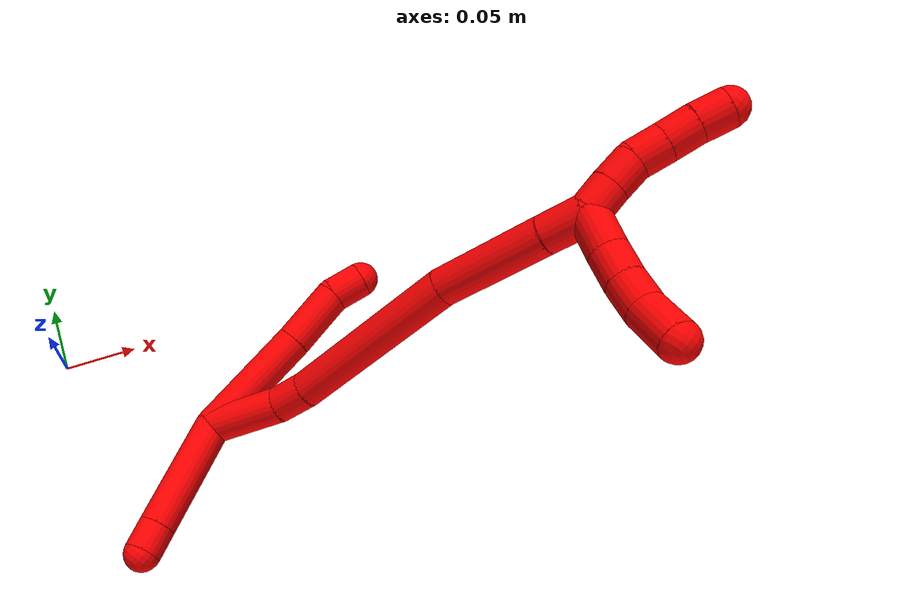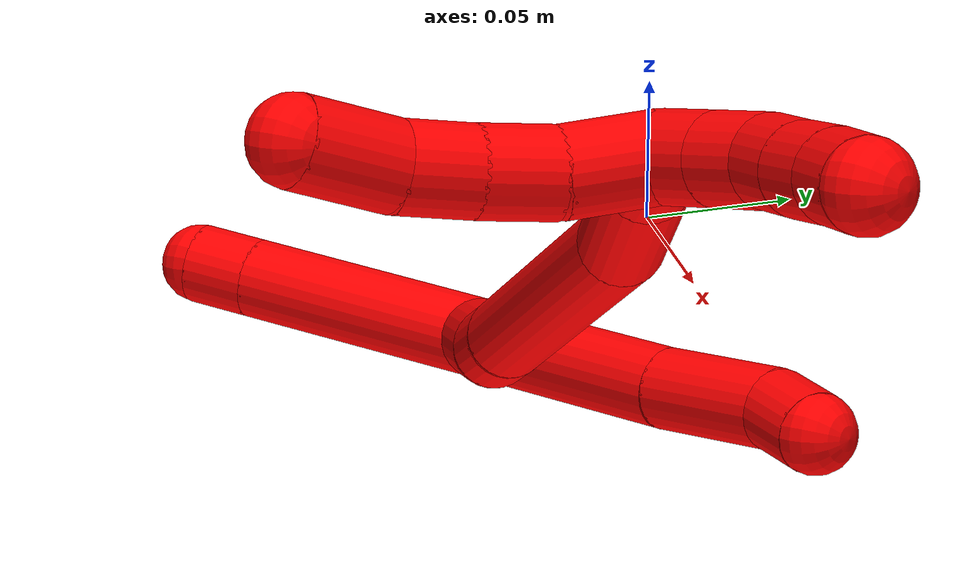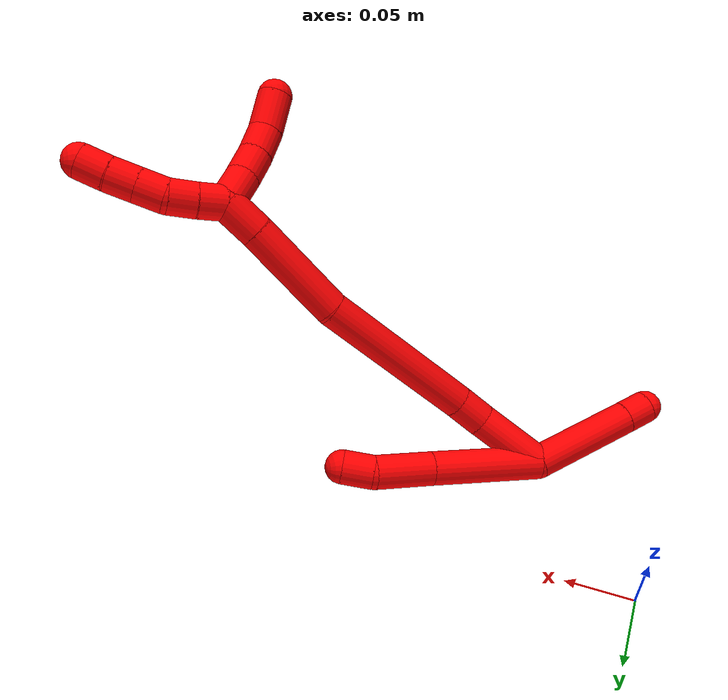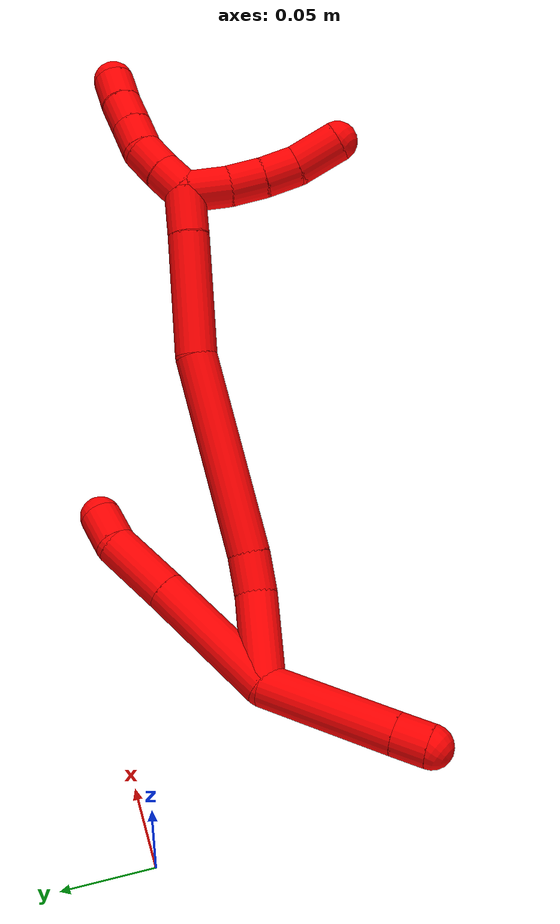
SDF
<sdf version="1.7">
 <world name="default">
  <model name="2">
   <static>0</static>
   <link name="2">
    <collision name="collision-cylinder-e_1_2_8">
     <pose>-0.000556 0.003736 0.041292 -0.090231 -0.013404 0.000605</pose>
     <geometry><cylinder><radius>0.0125</radius><length>0.082929</length></cylinder></geometry>
     <surface>
      <friction><ode><mu>1.16</mu><mu2>1.16</mu2><slip1>0</slip1><slip2>0</slip2></ode></friction>
      <contact><ode><kp>1e+06</kp><kd>1</kd><max_vel>0</max_vel><min_depth>0.001</min_depth></ode></contact>
     </surface>
    </collision>
    <visual name="visual-cylinder-e_1_2_8">
     <pose>-0.000556 0.003736 0.041292 -0.090231 -0.013404 0.000605</pose>
     <geometry><cylinder><radius>0.0125</radius><length>0.082929</length></cylinder></geometry>
     <material><ambient>1 0 0 1</ambient></material>
    </visual>
    <collision name="collision-cylinder-e_2_8_9">
     <pose>-0.000634 0.008498 0.104484 -0.046832 0.021802 -0.000511</pose>
     <geometry><cylinder><radius>0.0125</radius><length>0.043858</length></cylinder></geometry>
     <surface>
      <friction><ode><mu>1.16</mu><mu2>1.16</mu2><slip1>0</slip1><slip2>0</slip2></ode></friction>
      <contact><ode><kp>1e+06</kp><kd>1</kd><max_vel>0</max_vel><min_depth>0.001</min_depth></ode></contact>
     </surface>
    </collision>
    <visual name="visual-cylinder-e_2_8_9">
     <pose>-0.000634 0.008498 0.104484 -0.046832 0.021802 -0.000511</pose>
     <geometry><cylinder><radius>0.0125</radius><length>0.043858</length></cylinder></geometry>
     <material><ambient>1 0 0 1</ambient></material>
    </visual>
    <collision name="collision-cylinder-e_3_9_6">
     <pose>-0.000118 0.013928 0.137122 -0.389165 0.003242 -0.000639</pose>
     <geometry><cylinder><radius>0.0125</radius><length>0.023213</length></cylinder></geometry>
     <surface>
      <friction><ode><mu>1.16</mu><mu2>1.16</mu2><slip1>0</slip1><slip2>0</slip2></ode></friction>
      <contact><ode><kp>1e+06</kp><kd>1</kd><max_vel>0</max_vel><min_depth>0.001</min_depth></ode></contact>
     </surface>
    </collision>
    <visual name="visual-cylinder-e_3_9_6">
     <pose>-0.000118 0.013928 0.137122 -0.389165 0.003242 -0.000639</pose>
     <geometry><cylinder><radius>0.0125</radius><length>0.023213</length></cylinder></geometry>
     <material><ambient>1 0 0 1</ambient></material>
    </visual>
    <collision name="collision-cylinder-e_1_2_10">
     <pose>0.009615 0.008638 -0.037758 -2.9167 0.243329 -1.65023</pose>
     <geometry><cylinder><radius>0.0125</radius><length>0.079818</length></cylinder></geometry>
     <surface>
      <friction><ode><mu>1.16</mu><mu2>1.16</mu2><slip1>0</slip1><slip2>0</slip2></ode></friction>
      <contact><ode><kp>1e+06</kp><kd>1</kd><max_vel>0</max_vel><min_depth>0.001</min_depth></ode></contact>
     </surface>
    </collision>
    <visual name="visual-cylinder-e_1_2_10">
     <pose>0.009615 0.008638 -0.037758 -2.9167 0.243329 -1.65023</pose>
     <geometry><cylinder><radius>0.0125</radius><length>0.079818</length></cylinder></geometry>
     <material><ambient>1 0 0 1</ambient></material>
    </visual>
    <collision name="collision-cylinder-e_2_10_5">
     <pose>0.021719 0.019527 -0.085032 -2.90927 0.249154 -1.64134</pose>
     <geometry><cylinder><radius>0.0125</radius><length>0.020182</length></cylinder></geometry>
     <surface>
      <friction><ode><mu>1.16</mu><mu2>1.16</mu2><slip1>0</slip1><slip2>0</slip2></ode></friction>
      <contact><ode><kp>1e+06</kp><kd>1</kd><max_vel>0</max_vel><min_depth>0.001</min_depth></ode></contact>
     </surface>
    </collision>
    <visual name="visual-cylinder-e_2_10_5">
     <pose>0.021719 0.019527 -0.085032 -2.90927 0.249154 -1.64134</pose>
     <geometry><cylinder><radius>0.0125</radius><length>0.020182</length></cylinder></geometry>
     <material><ambient>1 0 0 1</ambient></material>
    </visual>
    <collision name="collision-cylinder-e_1_2_11">
     <pose>0.009379 0.015815 0.019215 -0.688668 0.360428 -0.130489</pose>
     <geometry><cylinder><radius>0.0125</radius><length>0.05319</length></cylinder></geometry>
     <surface>
      <friction><ode><mu>1.16</mu><mu2>1.16</mu2><slip1>0</slip1><slip2>0</slip2></ode></friction>
      <contact><ode><kp>1e+06</kp><kd>1</kd><max_vel>0</max_vel><min_depth>0.001</min_depth></ode></contact>
     </surface>
    </collision>
    <visual name="visual-cylinder-e_1_2_11">
     <pose>0.009379 0.015815 0.019215 -0.688668 0.360428 -0.130489</pose>
     <geometry><cylinder><radius>0.0125</radius><length>0.05319</length></cylinder></geometry>
     <material><ambient>1 0 0 1</ambient></material>
    </visual>
    <collision name="collision-cylinder-e_2_11_12">
     <pose>0.024625 0.03693 0.047437 -0.531743 0.511471 -0.142161</pose>
     <geometry><cylinder><radius>0.0125</radius><length>0.023969</length></cylinder></geometry>
     <surface>
      <friction><ode><mu>1.16</mu><mu2>1.16</mu2><slip1>0</slip1><slip2>0</slip2></ode></friction>
      <contact><ode><kp>1e+06</kp><kd>1</kd><max_vel>0</max_vel><min_depth>0.001</min_depth></ode></contact>
     </surface>
    </collision>
    <visual name="visual-cylinder-e_2_11_12">
     <pose>0.024625 0.03693 0.047437 -0.531743 0.511471 -0.142161</pose>
     <geometry><cylinder><radius>0.0125</radius><length>0.023969</length></cylinder></geometry>
     <material><ambient>1 0 0 1</ambient></material>
    </visual>
    <collision name="collision-cylinder-e_3_12_13">
     <pose>0.062575 0.062319 0.103576 -0.402946 0.559474 -0.117212</pose>
     <geometry><cylinder><radius>0.0125</radius><length>0.120902</length></cylinder></geometry>
     <surface>
      <friction><ode><mu>1.16</mu><mu2>1.16</mu2><slip1>0</slip1><slip2>0</slip2></ode></friction>
      <contact><ode><kp>1e+06</kp><kd>1</kd><max_vel>0</max_vel><min_depth>0.001</min_depth></ode></contact>
     </surface>
    </collision>
    <visual name="visual-cylinder-e_3_12_13">
     <pose>0.062575 0.062319 0.103576 -0.402946 0.559474 -0.117212</pose>
     <geometry><cylinder><radius>0.0125</radius><length>0.120902</length></cylinder></geometry>
     <material><ambient>1 0 0 1</ambient></material>
    </visual>
    <collision name="collision-cylinder-e_4_13_14">
     <pose>0.116238 0.099943 0.175145 -0.622354 0.622355 -0.206153</pose>
     <geometry><cylinder><radius>0.0125</radius><length>0.074036</length></cylinder></geometry>
     <surface>
      <friction><ode><mu>1.16</mu><mu2>1.16</mu2><slip1>0</slip1><slip2>0</slip2></ode></friction>
      <contact><ode><kp>1e+06</kp><kd>1</kd><max_vel>0</max_vel><min_depth>0.001</min_depth></ode></contact>
     </surface>
    </collision>
    <visual name="visual-cylinder-e_4_13_14">
     <pose>0.116238 0.099943 0.175145 -0.622354 0.622355 -0.206153</pose>
     <geometry><cylinder><radius>0.0125</radius><length>0.074036</length></cylinder></geometry>
     <material><ambient>1 0 0 1</ambient></material>
    </visual>
    <collision name="collision-cylinder-e_5_14_1">
     <pose>0.14528 0.12425 0.209231 -0.612061 0.564346 -0.182687</pose>
     <geometry><cylinder><radius>0.0125</radius><length>0.027903</length></cylinder></geometry>
     <surface>
      <friction><ode><mu>1.16</mu><mu2>1.16</mu2><slip1>0</slip1><slip2>0</slip2></ode></friction>
      <contact><ode><kp>1e+06</kp><kd>1</kd><max_vel>0</max_vel><min_depth>0.001</min_depth></ode></contact>
     </surface>
    </collision>
    <visual name="visual-cylinder-e_5_14_1">
     <pose>0.14528 0.12425 0.209231 -0.612061 0.564346 -0.182687</pose>
     <geometry><cylinder><radius>0.0125</radius><length>0.027903</length></cylinder></geometry>
     <material><ambient>1 0 0 1</ambient></material>
    </visual>
    <collision name="collision-cylinder-e_1_1_15">
     <pose>0.154943 0.142285 0.211492 -2.1513 0.161985 -0.298386</pose>
     <geometry><cylinder><radius>0.0125</radius><length>0.027294</length></cylinder></geometry>
     <surface>
      <friction><ode><mu>1.16</mu><mu2>1.16</mu2><slip1>0</slip1><slip2>0</slip2></ode></friction>
      <contact><ode><kp>1e+06</kp><kd>1</kd><max_vel>0</max_vel><min_depth>0.001</min_depth></ode></contact>
     </surface>
    </collision>
    <visual name="visual-cylinder-e_1_1_15">
     <pose>0.154943 0.142285 0.211492 -2.1513 0.161985 -0.298386</pose>
     <geometry><cylinder><radius>0.0125</radius><length>0.027294</length></cylinder></geometry>
     <material><ambient>1 0 0 1</ambient></material>
    </visual>
    <collision name="collision-cylinder-e_2_15_16">
     <pose>0.160789 0.162164 0.198117 -2.17822 0.334318 -0.624436</pose>
     <geometry><cylinder><radius>0.0125</radius><length>0.022217</length></cylinder></geometry>
     <surface>
      <friction><ode><mu>1.16</mu><mu2>1.16</mu2><slip1>0</slip1><slip2>0</slip2></ode></friction>
      <contact><ode><kp>1e+06</kp><kd>1</kd><max_vel>0</max_vel><min_depth>0.001</min_depth></ode></contact>
     </surface>
    </collision>
    <visual name="visual-cylinder-e_2_15_16">
     <pose>0.160789 0.162164 0.198117 -2.17822 0.334318 -0.624436</pose>
     <geometry><cylinder><radius>0.0125</radius><length>0.022217</length></cylinder></geometry>
     <material><ambient>1 0 0 1</ambient></material>
    </visual>
    <collision name="collision-cylinder-e_3_16_17">
     <pose>0.168636 0.179265 0.187075 -2.10786 0.402326 -0.68891</pose>
     <geometry><cylinder><radius>0.0125</radius><length>0.021464</length></cylinder></geometry>
     <surface>
      <friction><ode><mu>1.16</mu><mu2>1.16</mu2><slip1>0</slip1><slip2>0</slip2></ode></friction>
      <contact><ode><kp>1e+06</kp><kd>1</kd><max_vel>0</max_vel><min_depth>0.001</min_depth></ode></contact>
     </surface>
    </collision>
    <visual name="visual-cylinder-e_3_16_17">
     <pose>0.168636 0.179265 0.187075 -2.10786 0.402326 -0.68891</pose>
     <geometry><cylinder><radius>0.0125</radius><length>0.021464</length></cylinder></geometry>
     <material><ambient>1 0 0 1</ambient></material>
    </visual>
    <collision name="collision-cylinder-e_4_17_4">
     <pose>0.180976 0.198587 0.176832 -2.01754 0.595269 -0.906499</pose>
     <geometry><cylinder><radius>0.0125</radius><length>0.029025</length></cylinder></geometry>
     <surface>
      <friction><ode><mu>1.16</mu><mu2>1.16</mu2><slip1>0</slip1><slip2>0</slip2></ode></friction>
      <contact><ode><kp>1e+06</kp><kd>1</kd><max_vel>0</max_vel><min_depth>0.001</min_depth></ode></contact>
     </surface>
    </collision>
    <visual name="visual-cylinder-e_4_17_4">
     <pose>0.180976 0.198587 0.176832 -2.01754 0.595269 -0.906499</pose>
     <geometry><cylinder><radius>0.0125</radius><length>0.029025</length></cylinder></geometry>
     <material><ambient>1 0 0 1</ambient></material>
    </visual>
    <collision name="collision-cylinder-e_1_1_18">
     <pose>0.153876 0.13154 0.228801 -0.052122 0.11365 -0.002966</pose>
     <geometry><cylinder><radius>0.0125</radius><length>0.02</length></cylinder></geometry>
     <surface>
      <friction><ode><mu>1.16</mu><mu2>1.16</mu2><slip1>0</slip1><slip2>0</slip2></ode></friction>
      <contact><ode><kp>1e+06</kp><kd>1</kd><max_vel>0</max_vel><min_depth>0.001</min_depth></ode></contact>
     </surface>
    </collision>
    <visual name="visual-cylinder-e_1_1_18">
     <pose>0.153876 0.13154 0.228801 -0.052122 0.11365 -0.002966</pose>
     <geometry><cylinder><radius>0.0125</radius><length>0.02</length></cylinder></geometry>
     <material><ambient>1 0 0 1</ambient></material>
    </visual>
    <collision name="collision-cylinder-e_2_18_19">
     <pose>0.15638 0.133126 0.248571 -0.108022 0.137499 -0.007445</pose>
     <geometry><cylinder><radius>0.0125</radius><length>0.02</length></cylinder></geometry>
     <surface>
      <friction><ode><mu>1.16</mu><mu2>1.16</mu2><slip1>0</slip1><slip2>0</slip2></ode></friction>
      <contact><ode><kp>1e+06</kp><kd>1</kd><max_vel>0</max_vel><min_depth>0.001</min_depth></ode></contact>
     </surface>
    </collision>
    <visual name="visual-cylinder-e_2_18_19">
     <pose>0.15638 0.133126 0.248571 -0.108022 0.137499 -0.007445</pose>
     <geometry><cylinder><radius>0.0125</radius><length>0.02</length></cylinder></geometry>
     <material><ambient>1 0 0 1</ambient></material>
    </visual>
    <collision name="collision-cylinder-e_3_19_20">
     <pose>0.159677 0.138339 0.267313 -0.436105 0.193809 -0.043071</pose>
     <geometry><cylinder><radius>0.0125</radius><length>0.02</length></cylinder></geometry>
     <surface>
      <friction><ode><mu>1.16</mu><mu2>1.16</mu2><slip1>0</slip1><slip2>0</slip2></ode></friction>
      <contact><ode><kp>1e+06</kp><kd>1</kd><max_vel>0</max_vel><min_depth>0.001</min_depth></ode></contact>
     </surface>
    </collision>
    <visual name="visual-cylinder-e_3_19_20">
     <pose>0.159677 0.138339 0.267313 -0.436105 0.193809 -0.043071</pose>
     <geometry><cylinder><radius>0.0125</radius><length>0.02</length></cylinder></geometry>
     <material><ambient>1 0 0 1</ambient></material>
    </visual>
    <collision name="collision-cylinder-e_4_20_21">
     <pose>0.163681 0.146455 0.285147 -0.41798 0.209286 -0.044542</pose>
     <geometry><cylinder><radius>0.0125</radius><length>0.02</length></cylinder></geometry>
     <surface>
      <friction><ode><mu>1.16</mu><mu2>1.16</mu2><slip1>0</slip1><slip2>0</slip2></ode></friction>
      <contact><ode><kp>1e+06</kp><kd>1</kd><max_vel>0</max_vel><min_depth>0.001</min_depth></ode></contact>
     </surface>
    </collision>
    <visual name="visual-cylinder-e_4_20_21">
     <pose>0.163681 0.146455 0.285147 -0.41798 0.209286 -0.044542</pose>
     <geometry><cylinder><radius>0.0125</radius><length>0.02</length></cylinder></geometry>
     <material><ambient>1 0 0 1</ambient></material>
    </visual>
    <collision name="collision-cylinder-e_5_21_3">
     <pose>0.167878 0.155244 0.302589 -0.515591 0.213611 -0.056521</pose>
     <geometry><cylinder><radius>0.0125</radius><length>0.02</length></cylinder></geometry>
     <surface>
      <friction><ode><mu>1.16</mu><mu2>1.16</mu2><slip1>0</slip1><slip2>0</slip2></ode></friction>
      <contact><ode><kp>1e+06</kp><kd>1</kd><max_vel>0</max_vel><min_depth>0.001</min_depth></ode></contact>
     </surface>
    </collision>
    <visual name="visual-cylinder-e_5_21_3">
     <pose>0.167878 0.155244 0.302589 -0.515591 0.213611 -0.056521</pose>
     <geometry><cylinder><radius>0.0125</radius><length>0.02</length></cylinder></geometry>
     <material><ambient>1 0 0 1</ambient></material>
    </visual>
    <collision name="collision-sphere-3">
     <pose>0.169998 0.160062 0.311091 0 -0 0</pose>
     <geometry><sphere><radius>0.0125</radius></sphere></geometry>
     <surface>
      <friction><ode><mu>1.16</mu><mu2>1.16</mu2><slip1>0</slip1><slip2>0</slip2></ode></friction>
      <contact><ode><kp>1e+06</kp><kd>1</kd><max_vel>0</max_vel><min_depth>0.001</min_depth></ode></contact>
     </surface>
    </collision>
    <visual name="visual-sphere-3">
     <pose>0.169998 0.160062 0.311091 0 -0 0</pose>
     <geometry><sphere><radius>0.0125</radius></sphere></geometry>
     <material><ambient>1 0 0 1</ambient></material>
    </visual>
    <collision name="collision-sphere-21">
     <pose>0.165758 0.150425 0.294087 0 -0 0</pose>
     <geometry><sphere><radius>0.0125</radius></sphere></geometry>
     <surface>
      <friction><ode><mu>1.16</mu><mu2>1.16</mu2><slip1>0</slip1><slip2>0</slip2></ode></friction>
      <contact><ode><kp>1e+06</kp><kd>1</kd><max_vel>0</max_vel><min_depth>0.001</min_depth></ode></contact>
     </surface>
    </collision>
    <visual name="visual-sphere-21">
     <pose>0.165758 0.150425 0.294087 0 -0 0</pose>
     <geometry><sphere><radius>0.0125</radius></sphere></geometry>
     <material><ambient>1 0 0 1</ambient></material>
    </visual>
    <collision name="collision-sphere-20">
     <pose>0.161603 0.142484 0.276208 0 -0 0</pose>
     <geometry><sphere><radius>0.0125</radius></sphere></geometry>
     <surface>
      <friction><ode><mu>1.16</mu><mu2>1.16</mu2><slip1>0</slip1><slip2>0</slip2></ode></friction>
      <contact><ode><kp>1e+06</kp><kd>1</kd><max_vel>0</max_vel><min_depth>0.001</min_depth></ode></contact>
     </surface>
    </collision>
    <visual name="visual-sphere-20">
     <pose>0.161603 0.142484 0.276208 0 -0 0</pose>
     <geometry><sphere><radius>0.0125</radius></sphere></geometry>
     <material><ambient>1 0 0 1</ambient></material>
    </visual>
    <collision name="collision-sphere-19">
     <pose>0.157751 0.134194 0.258419 0 -0 0</pose>
     <geometry><sphere><radius>0.0125</radius></sphere></geometry>
     <surface>
      <friction><ode><mu>1.16</mu><mu2>1.16</mu2><slip1>0</slip1><slip2>0</slip2></ode></friction>
      <contact><ode><kp>1e+06</kp><kd>1</kd><max_vel>0</max_vel><min_depth>0.001</min_depth></ode></contact>
     </surface>
    </collision>
    <visual name="visual-sphere-19">
     <pose>0.157751 0.134194 0.258419 0 -0 0</pose>
     <geometry><sphere><radius>0.0125</radius></sphere></geometry>
     <material><ambient>1 0 0 1</ambient></material>
    </visual>
    <collision name="collision-sphere-5">
     <pose>0.024208 0.021778 -0.094549 0 -0 0</pose>
     <geometry><sphere><radius>0.0125</radius></sphere></geometry>
     <surface>
      <friction><ode><mu>1.16</mu><mu2>1.16</mu2><slip1>0</slip1><slip2>0</slip2></ode></friction>
      <contact><ode><kp>1e+06</kp><kd>1</kd><max_vel>0</max_vel><min_depth>0.001</min_depth></ode></contact>
     </surface>
    </collision>
    <visual name="visual-sphere-5">
     <pose>0.024208 0.021778 -0.094549 0 -0 0</pose>
     <geometry><sphere><radius>0.0125</radius></sphere></geometry>
     <material><ambient>1 0 0 1</ambient></material>
    </visual>
    <collision name="collision-sphere-10">
     <pose>0.019231 0.017275 -0.075516 0 -0 0</pose>
     <geometry><sphere><radius>0.0125</radius></sphere></geometry>
     <surface>
      <friction><ode><mu>1.16</mu><mu2>1.16</mu2><slip1>0</slip1><slip2>0</slip2></ode></friction>
      <contact><ode><kp>1e+06</kp><kd>1</kd><max_vel>0</max_vel><min_depth>0.001</min_depth></ode></contact>
     </surface>
    </collision>
    <visual name="visual-sphere-10">
     <pose>0.019231 0.017275 -0.075516 0 -0 0</pose>
     <geometry><sphere><radius>0.0125</radius></sphere></geometry>
     <material><ambient>1 0 0 1</ambient></material>
    </visual>
    <collision name="collision-sphere-6">
     <pose>-8e-05 0.018332 0.147861 0 -0 0</pose>
     <geometry><sphere><radius>0.0125</radius></sphere></geometry>
     <surface>
      <friction><ode><mu>1.16</mu><mu2>1.16</mu2><slip1>0</slip1><slip2>0</slip2></ode></friction>
      <contact><ode><kp>1e+06</kp><kd>1</kd><max_vel>0</max_vel><min_depth>0.001</min_depth></ode></contact>
     </surface>
    </collision>
    <visual name="visual-sphere-6">
     <pose>-8e-05 0.018332 0.147861 0 -0 0</pose>
     <geometry><sphere><radius>0.0125</radius></sphere></geometry>
     <material><ambient>1 0 0 1</ambient></material>
    </visual>
    <collision name="collision-sphere-9">
     <pose>-0.000155 0.009525 0.126384 0 -0 0</pose>
     <geometry><sphere><radius>0.0125</radius></sphere></geometry>
     <surface>
      <friction><ode><mu>1.16</mu><mu2>1.16</mu2><slip1>0</slip1><slip2>0</slip2></ode></friction>
      <contact><ode><kp>1e+06</kp><kd>1</kd><max_vel>0</max_vel><min_depth>0.001</min_depth></ode></contact>
     </surface>
    </collision>
    <visual name="visual-sphere-9">
     <pose>-0.000155 0.009525 0.126384 0 -0 0</pose>
     <geometry><sphere><radius>0.0125</radius></sphere></geometry>
     <material><ambient>1 0 0 1</ambient></material>
    </visual>
    <collision name="collision-sphere-2">
     <geometry><sphere><radius>0.0125</radius></sphere></geometry>
     <surface>
      <friction><ode><mu>1.16</mu><mu2>1.16</mu2><slip1>0</slip1><slip2>0</slip2></ode></friction>
      <contact><ode><kp>1e+06</kp><kd>1</kd><max_vel>0</max_vel><min_depth>0.001</min_depth></ode></contact>
     </surface>
    </collision>
    <visual name="visual-sphere-2">
     <geometry><sphere><radius>0.0125</radius></sphere></geometry>
     <material><ambient>1 0 0 1</ambient></material>
    </visual>
    <collision name="collision-sphere-8">
     <pose>-0.001112 0.007472 0.082584 0 -0 0</pose>
     <geometry><sphere><radius>0.0125</radius></sphere></geometry>
     <surface>
      <friction><ode><mu>1.16</mu><mu2>1.16</mu2><slip1>0</slip1><slip2>0</slip2></ode></friction>
      <contact><ode><kp>1e+06</kp><kd>1</kd><max_vel>0</max_vel><min_depth>0.001</min_depth></ode></contact>
     </surface>
    </collision>
    <visual name="visual-sphere-8">
     <pose>-0.001112 0.007472 0.082584 0 -0 0</pose>
     <geometry><sphere><radius>0.0125</radius></sphere></geometry>
     <material><ambient>1 0 0 1</ambient></material>
    </visual>
    <collision name="collision-sphere-11">
     <pose>0.018759 0.031631 0.038429 0 -0 0</pose>
     <geometry><sphere><radius>0.0125</radius></sphere></geometry>
     <surface>
      <friction><ode><mu>1.16</mu><mu2>1.16</mu2><slip1>0</slip1><slip2>0</slip2></ode></friction>
      <contact><ode><kp>1e+06</kp><kd>1</kd><max_vel>0</max_vel><min_depth>0.001</min_depth></ode></contact>
     </surface>
    </collision>
    <visual name="visual-sphere-11">
     <pose>0.018759 0.031631 0.038429 0 -0 0</pose>
     <geometry><sphere><radius>0.0125</radius></sphere></geometry>
     <material><ambient>1 0 0 1</ambient></material>
    </visual>
    <collision name="collision-sphere-12">
     <pose>0.030491 0.042229 0.056445 0 -0 0</pose>
     <geometry><sphere><radius>0.0125</radius></sphere></geometry>
     <surface>
      <friction><ode><mu>1.16</mu><mu2>1.16</mu2><slip1>0</slip1><slip2>0</slip2></ode></friction>
      <contact><ode><kp>1e+06</kp><kd>1</kd><max_vel>0</max_vel><min_depth>0.001</min_depth></ode></contact>
     </surface>
    </collision>
    <visual name="visual-sphere-12">
     <pose>0.030491 0.042229 0.056445 0 -0 0</pose>
     <geometry><sphere><radius>0.0125</radius></sphere></geometry>
     <material><ambient>1 0 0 1</ambient></material>
    </visual>
    <collision name="collision-sphere-13">
     <pose>0.094658 0.08241 0.150707 0 -0 0</pose>
     <geometry><sphere><radius>0.0125</radius></sphere></geometry>
     <surface>
      <friction><ode><mu>1.16</mu><mu2>1.16</mu2><slip1>0</slip1><slip2>0</slip2></ode></friction>
      <contact><ode><kp>1e+06</kp><kd>1</kd><max_vel>0</max_vel><min_depth>0.001</min_depth></ode></contact>
     </surface>
    </collision>
    <visual name="visual-sphere-13">
     <pose>0.094658 0.08241 0.150707 0 -0 0</pose>
     <geometry><sphere><radius>0.0125</radius></sphere></geometry>
     <material><ambient>1 0 0 1</ambient></material>
    </visual>
    <collision name="collision-sphere-14">
     <pose>0.137818 0.117477 0.199583 0 -0 0</pose>
     <geometry><sphere><radius>0.0125</radius></sphere></geometry>
     <surface>
      <friction><ode><mu>1.16</mu><mu2>1.16</mu2><slip1>0</slip1><slip2>0</slip2></ode></friction>
      <contact><ode><kp>1e+06</kp><kd>1</kd><max_vel>0</max_vel><min_depth>0.001</min_depth></ode></contact>
     </surface>
    </collision>
    <visual name="visual-sphere-14">
     <pose>0.137818 0.117477 0.199583 0 -0 0</pose>
     <geometry><sphere><radius>0.0125</radius></sphere></geometry>
     <material><ambient>1 0 0 1</ambient></material>
    </visual>
    <collision name="collision-sphere-1">
     <pose>0.152742 0.131023 0.218879 0 -0 0</pose>
     <geometry><sphere><radius>0.0125</radius></sphere></geometry>
     <surface>
      <friction><ode><mu>1.16</mu><mu2>1.16</mu2><slip1>0</slip1><slip2>0</slip2></ode></friction>
      <contact><ode><kp>1e+06</kp><kd>1</kd><max_vel>0</max_vel><min_depth>0.001</min_depth></ode></contact>
     </surface>
    </collision>
    <visual name="visual-sphere-1">
     <pose>0.152742 0.131023 0.218879 0 -0 0</pose>
     <geometry><sphere><radius>0.0125</radius></sphere></geometry>
     <material><ambient>1 0 0 1</ambient></material>
    </visual>
    <collision name="collision-sphere-18">
     <pose>0.15501 0.132058 0.238723 0 -0 0</pose>
     <geometry><sphere><radius>0.0125</radius></sphere></geometry>
     <surface>
      <friction><ode><mu>1.16</mu><mu2>1.16</mu2><slip1>0</slip1><slip2>0</slip2></ode></friction>
      <contact><ode><kp>1e+06</kp><kd>1</kd><max_vel>0</max_vel><min_depth>0.001</min_depth></ode></contact>
     </surface>
    </collision>
    <visual name="visual-sphere-18">
     <pose>0.15501 0.132058 0.238723 0 -0 0</pose>
     <geometry><sphere><radius>0.0125</radius></sphere></geometry>
     <material><ambient>1 0 0 1</ambient></material>
    </visual>
    <collision name="collision-sphere-15">
     <pose>0.157144 0.153547 0.204106 0 -0 0</pose>
     <geometry><sphere><radius>0.0125</radius></sphere></geometry>
     <surface>
      <friction><ode><mu>1.16</mu><mu2>1.16</mu2><slip1>0</slip1><slip2>0</slip2></ode></friction>
      <contact><ode><kp>1e+06</kp><kd>1</kd><max_vel>0</max_vel><min_depth>0.001</min_depth></ode></contact>
     </surface>
    </collision>
    <visual name="visual-sphere-15">
     <pose>0.157144 0.153547 0.204106 0 -0 0</pose>
     <geometry><sphere><radius>0.0125</radius></sphere></geometry>
     <material><ambient>1 0 0 1</ambient></material>
    </visual>
    <collision name="collision-sphere-16">
     <pose>0.164434 0.17078 0.192128 0 -0 0</pose>
     <geometry><sphere><radius>0.0125</radius></sphere></geometry>
     <surface>
      <friction><ode><mu>1.16</mu><mu2>1.16</mu2><slip1>0</slip1><slip2>0</slip2></ode></friction>
      <contact><ode><kp>1e+06</kp><kd>1</kd><max_vel>0</max_vel><min_depth>0.001</min_depth></ode></contact>
     </surface>
    </collision>
    <visual name="visual-sphere-16">
     <pose>0.164434 0.17078 0.192128 0 -0 0</pose>
     <geometry><sphere><radius>0.0125</radius></sphere></geometry>
     <material><ambient>1 0 0 1</ambient></material>
    </visual>
    <collision name="collision-sphere-17">
     <pose>0.172838 0.18775 0.182023 0 -0 0</pose>
     <geometry><sphere><radius>0.0125</radius></sphere></geometry>
     <surface>
      <friction><ode><mu>1.16</mu><mu2>1.16</mu2><slip1>0</slip1><slip2>0</slip2></ode></friction>
      <contact><ode><kp>1e+06</kp><kd>1</kd><max_vel>0</max_vel><min_depth>0.001</min_depth></ode></contact>
     </surface>
    </collision>
    <visual name="visual-sphere-17">
     <pose>0.172838 0.18775 0.182023 0 -0 0</pose>
     <geometry><sphere><radius>0.0125</radius></sphere></geometry>
     <material><ambient>1 0 0 1</ambient></material>
    </visual>
    <collision name="collision-sphere-4">
     <pose>0.189113 0.209424 0.17164 0 -0 0</pose>
     <geometry><sphere><radius>0.0125</radius></sphere></geometry>
     <surface>
      <friction><ode><mu>1.16</mu><mu2>1.16</mu2><slip1>0</slip1><slip2>0</slip2></ode></friction>
      <contact><ode><kp>1e+06</kp><kd>1</kd><max_vel>0</max_vel><min_depth>0.001</min_depth></ode></contact>
     </surface>
    </collision>
    <visual name="visual-sphere-4">
     <pose>0.189113 0.209424 0.17164 0 -0 0</pose>
     <geometry><sphere><radius>0.0125</radius></sphere></geometry>
     <material><ambient>1 0 0 1</ambient></material>
    </visual>
    <inertial>
     <pose>0.073529 0.071212 0.114556 0 -0 0</pose>
     <mass>0.75</mass>
     <inertia>
      <ixx>0.000191</ixx>
      <ixy>0</ixy>
      <ixz>0</ixz>
      <iyy>0.00021</iyy>
      <iyz>0</iyz>
      <izz>-0.000205</izz>
     </inertia>
    </inertial>
   </link>
   <pose>0.08944 -0.083332 0.011965 -0.526802 -1.3512 -2.02045</pose>
  </model>
 </world>
</sdf>
